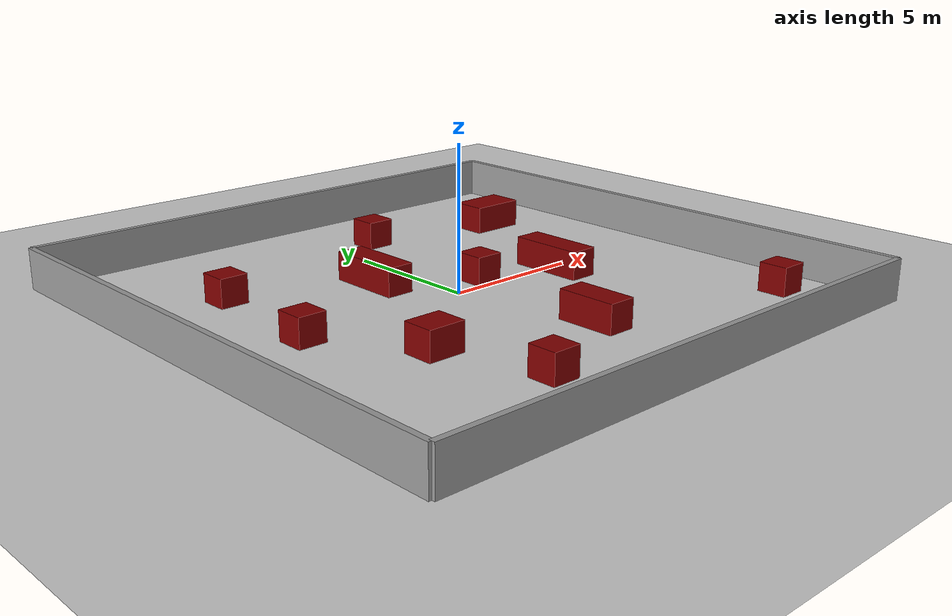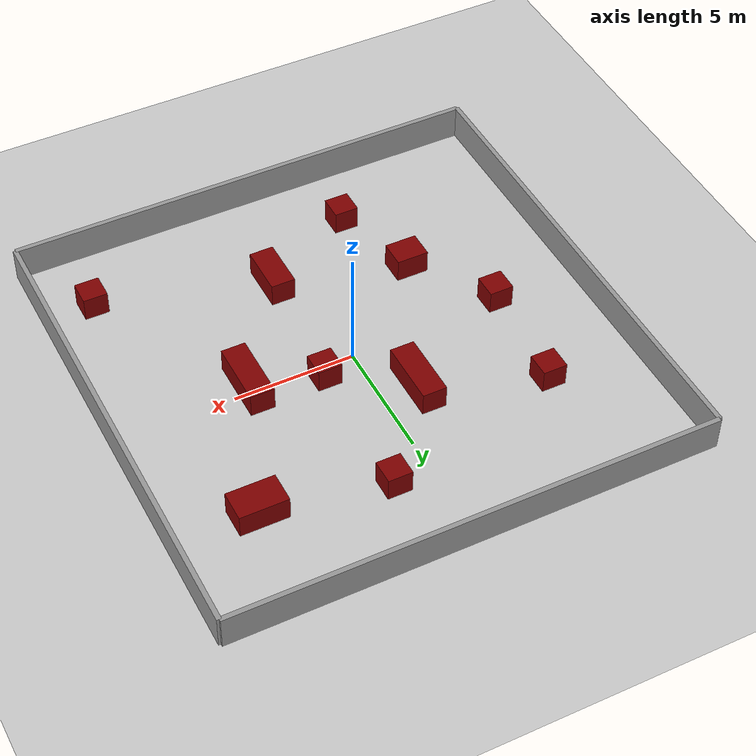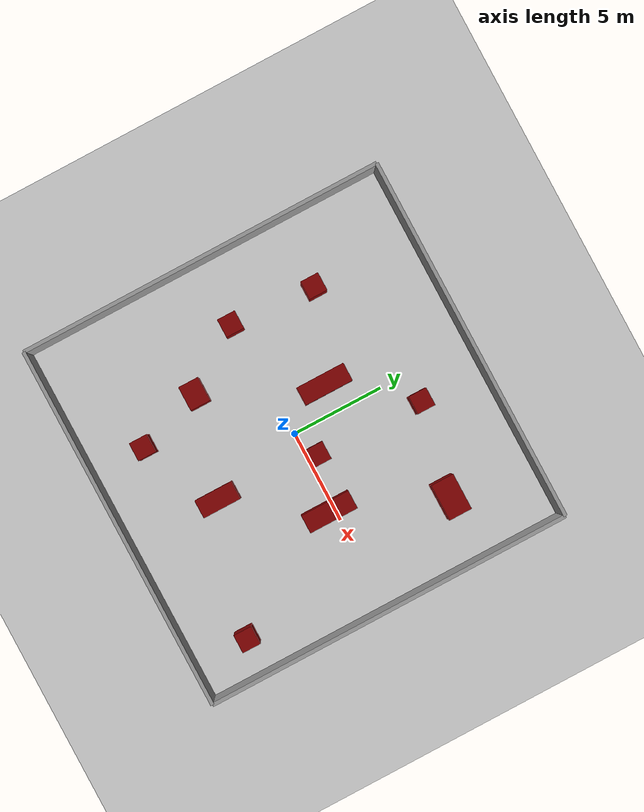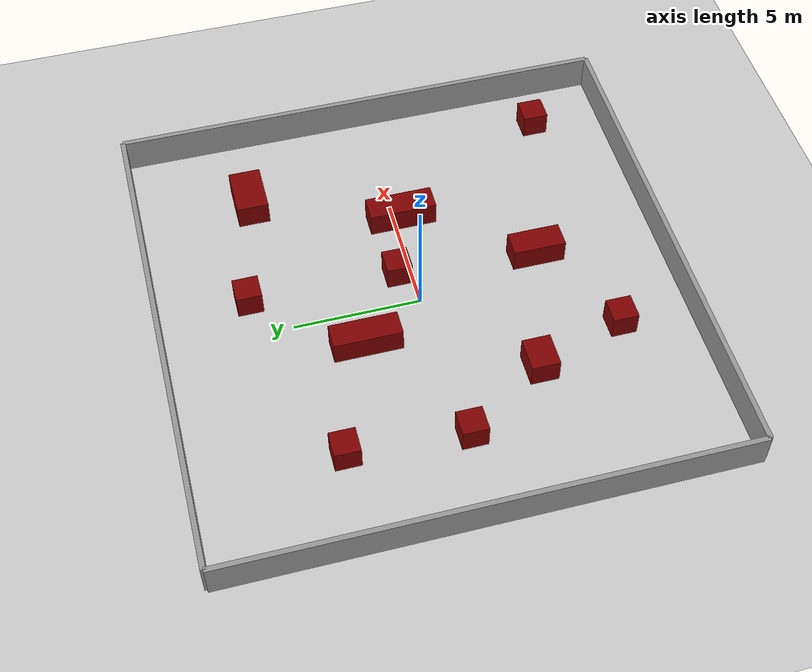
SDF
<sdf version="1.6">
 <world name="default">
  <light name="sun" type="directional">
   <cast_shadows>0</cast_shadows>
   <pose>0 0 10 0 -0 0</pose>
   <diffuse>0.8 0.8 0.8 1</diffuse>
   <specular>0.1 0.1 0.1 1</specular>
   <attenuation>
    <range>1000</range>
    <constant>0.9</constant>
    <linear>0.01</linear>
    <quadratic>0.001</quadratic>
   </attenuation>
   <direction>-0.5 0.5 -1</direction>
  </light>
  <model name="ground_plane">
   <static>1</static>
   <link name="link">
    <collision name="collision">
     <geometry><plane><normal>0 0 1</normal><size>100 100</size></plane></geometry>
     <surface><friction><ode><mu>100</mu><mu2>50</mu2></ode></friction></surface>
    </collision>
    <visual name="visual">
     <cast_shadows>0</cast_shadows>
     <geometry><plane><normal>0 0 1</normal><size>100 100</size></plane></geometry>
     <material>
      <script><uri>file://media/materials/scripts/gazebo.material</uri><name>Gazebo/Grey</name></script>
     </material>
    </visual>
   </link>
  </model>
  <gravity>0 0 -9.8</gravity>
  <magnetic_field>6e-06 2.3e-05 -4.2e-05</magnetic_field>
  <atmosphere type="adiabatic"/>
  <physics name="default_physics" default="0" type="ode">
   <max_step_size>0.001</max_step_size>
   <real_time_factor>1</real_time_factor>
   <real_time_update_rate>1000</real_time_update_rate>
  </physics>
  <scene><ambient>0.4 0.4 0.4 1</ambient><background>0.7 0.7 0.7 1</background><shadows>1</shadows></scene>
  <spherical_coordinates>
   <surface_model>EARTH_WGS84</surface_model>
   <latitude_deg>0</latitude_deg>
   <longitude_deg>0</longitude_deg>
   <elevation>0</elevation>
   <heading_deg>0</heading_deg>
  </spherical_coordinates>
  <model name="grey_wall_1">
   <link name="link">
    <inertial>
     <mass>1</mass>
     <inertia><ixx>1</ixx><ixy>0</ixy><ixz>0</ixz><iyy>1</iyy><iyz>0</iyz><izz>1</izz></inertia>
    </inertial>
    <visual name="visual">
     <cast_shadows>0</cast_shadows>
     <geometry><box><size>20 0.2 2.8</size></box></geometry>
     <material>
      <script>
       <uri>model://grey_wall/materials/scripts</uri>
       <uri>model://grey_wall/materials/textures</uri>
       <name>vrc/grey_wall</name>
      </script>
      <ambient>1 1 1 1</ambient>
      <diffuse>1 1 1 1</diffuse>
      <specular>0 0 0 1</specular>
      <emissive>0 0 0 1</emissive>
      <shader type="vertex"><normal_map>__default__</normal_map></shader>
     </material>
    </visual>
    <collision name="collision">
     <geometry><box><size>20 0.2 2.8</size></box></geometry>
     <surface>
      <friction>
       <ode><mu>1</mu><mu2>1</mu2><fdir1>0 0 0</fdir1><slip1>0</slip1><slip2>0</slip2></ode>
       <torsional>
        <coefficient>1</coefficient>
        <patch_radius>0</patch_radius>
        <surface_radius>0</surface_radius>
        <use_patch_radius>1</use_patch_radius>
        <ode><slip>0</slip></ode>
       </torsional>
      </friction>
      <bounce><restitution_coefficient>0</restitution_coefficient><threshold>1e+06</threshold></bounce>
      <contact>
       <collide_without_contact>0</collide_without_contact>
       <collide_without_contact_bitmask>1</collide_without_contact_bitmask>
       <collide_bitmask>1</collide_bitmask>
       <ode>
        <soft_cfm>0</soft_cfm>
        <soft_erp>0.2</soft_erp>
        <kp>1e+13</kp>
        <kd>1</kd>
        <max_vel>0.01</max_vel>
        <min_depth>0</min_depth>
       </ode>
       <bullet>
        <split_impulse>1</split_impulse>
        <split_impulse_penetration_threshold>-0.01</split_impulse_penetration_threshold>
        <soft_cfm>0</soft_cfm>
        <soft_erp>0.2</soft_erp>
        <kp>1e+13</kp>
        <kd>1</kd>
       </bullet>
      </contact>
     </surface>
    </collision>
   </link>
   <static>1</static>
   <pose>0 10 0 0 -0 0</pose>
  </model>
  <model name="grey_wall_2">
   <link name="link">
    <inertial>
     <mass>1</mass>
     <inertia><ixx>1</ixx><ixy>0</ixy><ixz>0</ixz><iyy>1</iyy><iyz>0</iyz><izz>1</izz></inertia>
    </inertial>
    <visual name="visual">
     <cast_shadows>0</cast_shadows>
     <geometry><box><size>20 0.2 2.8</size></box></geometry>
     <material>
      <script>
       <uri>model://grey_wall/materials/scripts</uri>
       <uri>model://grey_wall/materials/textures</uri>
       <name>vrc/grey_wall</name>
      </script>
      <ambient>1 1 1 1</ambient>
      <diffuse>1 1 1 1</diffuse>
      <specular>0 0 0 1</specular>
      <emissive>0 0 0 1</emissive>
      <shader type="vertex"><normal_map>__default__</normal_map></shader>
     </material>
    </visual>
    <collision name="collision">
     <geometry><box><size>20 0.2 2.8</size></box></geometry>
     <surface>
      <friction>
       <ode><mu>1</mu><mu2>1</mu2><fdir1>0 0 0</fdir1><slip1>0</slip1><slip2>0</slip2></ode>
       <torsional>
        <coefficient>1</coefficient>
        <patch_radius>0</patch_radius>
        <surface_radius>0</surface_radius>
        <use_patch_radius>1</use_patch_radius>
        <ode><slip>0</slip></ode>
       </torsional>
      </friction>
      <bounce><restitution_coefficient>0</restitution_coefficient><threshold>1e+06</threshold></bounce>
      <contact>
       <collide_without_contact>0</collide_without_contact>
       <collide_without_contact_bitmask>1</collide_without_contact_bitmask>
       <collide_bitmask>1</collide_bitmask>
       <ode>
        <soft_cfm>0</soft_cfm>
        <soft_erp>0.2</soft_erp>
        <kp>1e+13</kp>
        <kd>1</kd>
        <max_vel>0.01</max_vel>
        <min_depth>0</min_depth>
       </ode>
       <bullet>
        <split_impulse>1</split_impulse>
        <split_impulse_penetration_threshold>-0.01</split_impulse_penetration_threshold>
        <soft_cfm>0</soft_cfm>
        <soft_erp>0.2</soft_erp>
        <kp>1e+13</kp>
        <kd>1</kd>
       </bullet>
      </contact>
     </surface>
    </collision>
   </link>
   <static>1</static>
   <pose>0 -10 0 0 -0 0</pose>
  </model>
  <model name="grey_wall_3">
   <link name="link">
    <inertial>
     <mass>1</mass>
     <inertia><ixx>1</ixx><ixy>0</ixy><ixz>0</ixz><iyy>1</iyy><iyz>0</iyz><izz>1</izz></inertia>
    </inertial>
    <visual name="visual">
     <cast_shadows>0</cast_shadows>
     <geometry><box><size>20 0.2 2.8</size></box></geometry>
     <material>
      <script>
       <uri>model://grey_wall/materials/scripts</uri>
       <uri>model://grey_wall/materials/textures</uri>
       <name>vrc/grey_wall</name>
      </script>
      <ambient>1 1 1 1</ambient>
      <diffuse>1 1 1 1</diffuse>
      <specular>0 0 0 1</specular>
      <emissive>0 0 0 1</emissive>
      <shader type="vertex"><normal_map>__default__</normal_map></shader>
     </material>
    </visual>
    <collision name="collision">
     <geometry><box><size>20 0.2 2.8</size></box></geometry>
     <surface>
      <friction>
       <ode><mu>1</mu><mu2>1</mu2><fdir1>0 0 0</fdir1><slip1>0</slip1><slip2>0</slip2></ode>
       <torsional>
        <coefficient>1</coefficient>
        <patch_radius>0</patch_radius>
        <surface_radius>0</surface_radius>
        <use_patch_radius>1</use_patch_radius>
        <ode><slip>0</slip></ode>
       </torsional>
      </friction>
      <bounce><restitution_coefficient>0</restitution_coefficient><threshold>1e+06</threshold></bounce>
      <contact>
       <collide_without_contact>0</collide_without_contact>
       <collide_without_contact_bitmask>1</collide_without_contact_bitmask>
       <collide_bitmask>1</collide_bitmask>
       <ode>
        <soft_cfm>0</soft_cfm>
        <soft_erp>0.2</soft_erp>
        <kp>1e+13</kp>
        <kd>1</kd>
        <max_vel>0.01</max_vel>
        <min_depth>0</min_depth>
       </ode>
       <bullet>
        <split_impulse>1</split_impulse>
        <split_impulse_penetration_threshold>-0.01</split_impulse_penetration_threshold>
        <soft_cfm>0</soft_cfm>
        <soft_erp>0.2</soft_erp>
        <kp>1e+13</kp>
        <kd>1</kd>
       </bullet>
      </contact>
     </surface>
    </collision>
   </link>
   <static>1</static>
   <pose>-10 0 0 0 0 -1.5708</pose>
  </model>
  <model name="grey_wall_4">
   <link name="link">
    <inertial>
     <mass>1</mass>
     <inertia><ixx>1</ixx><ixy>0</ixy><ixz>0</ixz><iyy>1</iyy><iyz>0</iyz><izz>1</izz></inertia>
    </inertial>
    <visual name="visual">
     <cast_shadows>0</cast_shadows>
     <geometry><box><size>20 0.2 2.8</size></box></geometry>
     <material>
      <script>
       <uri>model://grey_wall/materials/scripts</uri>
       <uri>model://grey_wall/materials/textures</uri>
       <name>vrc/grey_wall</name>
      </script>
      <ambient>1 1 1 1</ambient>
      <diffuse>1 1 1 1</diffuse>
      <specular>0 0 0 1</specular>
      <emissive>0 0 0 1</emissive>
      <shader type="vertex"><normal_map>__default__</normal_map></shader>
     </material>
    </visual>
    <collision name="collision">
     <geometry><box><size>20 0.2 2.8</size></box></geometry>
     <surface>
      <friction>
       <ode><mu>1</mu><mu2>1</mu2><fdir1>0 0 0</fdir1><slip1>0</slip1><slip2>0</slip2></ode>
       <torsional>
        <coefficient>1</coefficient>
        <patch_radius>0</patch_radius>
        <surface_radius>0</surface_radius>
        <use_patch_radius>1</use_patch_radius>
        <ode><slip>0</slip></ode>
       </torsional>
      </friction>
      <bounce><restitution_coefficient>0</restitution_coefficient><threshold>1e+06</threshold></bounce>
      <contact>
       <collide_without_contact>0</collide_without_contact>
       <collide_without_contact_bitmask>1</collide_without_contact_bitmask>
       <collide_bitmask>1</collide_bitmask>
       <ode>
        <soft_cfm>0</soft_cfm>
        <soft_erp>0.2</soft_erp>
        <kp>1e+13</kp>
        <kd>1</kd>
        <max_vel>0.01</max_vel>
        <min_depth>0</min_depth>
       </ode>
       <bullet>
        <split_impulse>1</split_impulse>
        <split_impulse_penetration_threshold>-0.01</split_impulse_penetration_threshold>
        <soft_cfm>0</soft_cfm>
        <soft_erp>0.2</soft_erp>
        <kp>1e+13</kp>
        <kd>1</kd>
       </bullet>
      </contact>
     </surface>
    </collision>
   </link>
   <static>1</static>
   <pose>10 0 0 0 -0 1.5708</pose>
  </model>
  <model name="unit_box_0">
   <pose>-1.50301 2.51635 0.499907 6.9e-05 -0 0</pose>
   <link name="link">
    <inertial>
     <mass>1</mass>
     <inertia>
      <ixx>0.166667</ixx>
      <ixy>0</ixy>
      <ixz>0</ixz>
      <iyy>0.166667</iyy>
      <iyz>0</iyz>
      <izz>0.166667</izz>
     </inertia>
    </inertial>
    <collision name="collision"><geometry><box><size>1 2.67 1</size></box></geometry></collision>
    <visual name="visual">
     <geometry><box><size>1 2.67 1</size></box></geometry>
     <material>
      <ambient>0.5 0 0 1</ambient>
      <diffuse>0.5 0 0 1</diffuse>
      <specular>0.1 0.1 0.1 1</specular>
      <emissive>0 0 0 0</emissive>
      <script><name>Gazebo/Grey</name><uri>file://media/materials/scripts/gazebo.material</uri></script>
     </material>
    </visual>
   </link>
  </model>
  <model name="unit_box_1">
   <pose>6.53109 5.45916 0.5 0 -0 0</pose>
   <link name="link">
    <inertial>
     <mass>1</mass>
     <inertia>
      <ixx>0.166667</ixx>
      <ixy>0</ixy>
      <ixz>0</ixz>
      <iyy>0.166667</iyy>
      <iyz>0</iyz>
      <izz>0.166667</izz>
     </inertia>
    </inertial>
    <collision name="collision"><geometry><box><size>1.98744 1.25657 1</size></box></geometry></collision>
    <visual name="visual">
     <geometry><box><size>1.98744 1.25657 1</size></box></geometry>
     <material>
      <ambient>0.5 0 0 1</ambient>
      <diffuse>0.5 0 0 1</diffuse>
      <specular>0.1 0.1 0.1 1</specular>
      <emissive>0 0 0 0</emissive>
      <script><name>Gazebo/Grey</name><uri>file://media/materials/scripts/gazebo.material</uri></script>
     </material>
    </visual>
   </link>
  </model>
  <model name="unit_box_2">
   <pose>4.2885 -0.305795 0.499904 -7.2e-05 0 0</pose>
   <link name="link">
    <inertial>
     <mass>1</mass>
     <inertia>
      <ixx>0.166667</ixx>
      <ixy>0</ixy>
      <ixz>0</ixz>
      <iyy>0.166667</iyy>
      <iyz>0</iyz>
      <izz>0.166667</izz>
     </inertia>
    </inertial>
    <collision name="collision"><geometry><box><size>1 2.6886 1</size></box></geometry></collision>
    <visual name="visual">
     <geometry><box><size>1 2.6886 1</size></box></geometry>
     <material>
      <ambient>0.5 0 0 1</ambient>
      <diffuse>0.5 0 0 1</diffuse>
      <specular>0.1 0.1 0.1 1</specular>
      <emissive>0 0 0 0</emissive>
      <script><name>Gazebo/Grey</name><uri>file://media/materials/scripts/gazebo.material</uri></script>
     </material>
    </visual>
   </link>
  </model>
  <model name="unit_box_3">
   <pose>1.089 -4.98568 0.49998 -1.9e-05 0 0</pose>
   <link name="link">
    <inertial>
     <mass>1</mass>
     <inertia>
      <ixx>0.166667</ixx>
      <ixy>0</ixy>
      <ixz>0</ixz>
      <iyy>0.166667</iyy>
      <iyz>0</iyz>
      <izz>0.166667</izz>
     </inertia>
    </inertial>
    <collision name="collision"><geometry><box><size>1 2.08446 1</size></box></geometry></collision>
    <visual name="visual">
     <geometry><box><size>1 2.08446 1</size></box></geometry>
     <material>
      <ambient>0.5 0 0 1</ambient>
      <diffuse>0.5 0 0 1</diffuse>
      <specular>0.1 0.1 0.1 1</specular>
      <emissive>0 0 0 0</emissive>
      <script><name>Gazebo/Grey</name><uri>file://media/materials/scripts/gazebo.material</uri></script>
     </material>
    </visual>
   </link>
  </model>
  <model name="unit_box_4">
   <pose>-4.16235 -3.50212 0.5 0 -0 1.8e-05</pose>
   <link name="link">
    <inertial>
     <mass>1</mass>
     <inertia>
      <ixx>0.166667</ixx>
      <ixy>0</ixy>
      <ixz>0</ixz>
      <iyy>0.166667</iyy>
      <iyz>0</iyz>
      <izz>0.166667</izz>
     </inertia>
    </inertial>
    <collision name="collision"><geometry><box><size>1.32862 1.10201 1</size></box></geometry></collision>
    <visual name="visual">
     <geometry><box><size>1.32862 1.10201 1</size></box></geometry>
     <material>
      <ambient>0.5 0 0 1</ambient>
      <diffuse>0.5 0 0 1</diffuse>
      <specular>0.1 0.1 0.1 1</specular>
      <emissive>0 0 0 0</emissive>
      <script><name>Gazebo/Grey</name><uri>file://media/materials/scripts/gazebo.material</uri></script>
     </material>
    </visual>
   </link>
  </model>
  <model name="unit_box_5">
   <pose>-6.11816 4.3731 0.499995 -1e-05 0 0</pose>
   <link name="link">
    <inertial>
     <mass>1</mass>
     <inertia>
      <ixx>0.166667</ixx>
      <ixy>0</ixy>
      <ixz>0</ixz>
      <iyy>0.166667</iyy>
      <iyz>0</iyz>
      <izz>0.166667</izz>
     </inertia>
    </inertial>
    <collision name="collision"><geometry><box><size>1 1 1</size></box></geometry></collision>
    <visual name="visual">
     <geometry><box><size>1 1 1</size></box></geometry>
     <material>
      <ambient>0.5 0 0 1</ambient>
      <diffuse>0.5 0 0 1</diffuse>
      <specular>0.1 0.1 0.1 1</specular>
      <emissive>0 0 0 0</emissive>
      <script><name>Gazebo/Grey</name><uri>file://media/materials/scripts/gazebo.material</uri></script>
     </material>
    </visual>
   </link>
  </model>
  <model name="unit_box_6">
   <pose>1.55408 6.44098 0.499995 0 1e-05 0</pose>
   <link name="link">
    <inertial>
     <mass>1</mass>
     <inertia>
      <ixx>0.166667</ixx>
      <ixy>0</ixy>
      <ixz>0</ixz>
      <iyy>0.166667</iyy>
      <iyz>0</iyz>
      <izz>0.166667</izz>
     </inertia>
    </inertial>
    <collision name="collision"><geometry><box><size>1 1 1</size></box></geometry></collision>
    <visual name="visual">
     <geometry><box><size>1 1 1</size></box></geometry>
     <material>
      <ambient>0.5 0 0 1</ambient>
      <diffuse>0.5 0 0 1</diffuse>
      <specular>0.1 0.1 0.1 1</specular>
      <emissive>0 0 0 0</emissive>
      <script><name>Gazebo/Grey</name><uri>file://media/materials/scripts/gazebo.material</uri></script>
     </material>
    </visual>
   </link>
  </model>
  <model name="unit_box_7">
   <pose>1.47283 0.557103 0.499995 -1e-05 0 0</pose>
   <link name="link">
    <inertial>
     <mass>1</mass>
     <inertia>
      <ixx>0.166667</ixx>
      <ixy>0</ixy>
      <ixz>0</ixz>
      <iyy>0.166667</iyy>
      <iyz>0</iyz>
      <izz>0.166667</izz>
     </inertia>
    </inertial>
    <collision name="collision"><geometry><box><size>1 1 1</size></box></geometry></collision>
    <visual name="visual">
     <geometry><box><size>1 1 1</size></box></geometry>
     <material>
      <ambient>0.5 0 0 1</ambient>
      <diffuse>0.5 0 0 1</diffuse>
      <specular>0.1 0.1 0.1 1</specular>
      <emissive>0 0 0 0</emissive>
      <script><name>Gazebo/Grey</name><uri>file://media/materials/scripts/gazebo.material</uri></script>
     </material>
    </visual>
   </link>
  </model>
  <model name="unit_box_8">
   <pose>8 -7 0.499995 1e-05 -0 0</pose>
   <link name="link">
    <inertial>
     <mass>1</mass>
     <inertia>
      <ixx>0.166667</ixx>
      <ixy>0</ixy>
      <ixz>0</ixz>
      <iyy>0.166667</iyy>
      <iyz>0</iyz>
      <izz>0.166667</izz>
     </inertia>
    </inertial>
    <collision name="collision"><geometry><box><size>1 1 1</size></box></geometry></collision>
    <visual name="visual">
     <geometry><box><size>1 1 1</size></box></geometry>
     <material>
      <ambient>0.5 0 0 1</ambient>
      <diffuse>0.5 0 0 1</diffuse>
      <specular>0.1 0.1 0.1 1</specular>
      <emissive>0 0 0 0</emissive>
      <script><name>Gazebo/Grey</name><uri>file://media/materials/scripts/gazebo.material</uri></script>
     </material>
    </visual>
   </link>
  </model>
  <model name="unit_box_9">
   <pose>-3.00931 -7.07426 0.499995 -1e-05 0 0</pose>
   <link name="link">
    <inertial>
     <mass>1</mass>
     <inertia>
      <ixx>0.166667</ixx>
      <ixy>0</ixy>
      <ixz>0</ixz>
      <iyy>0.166667</iyy>
      <iyz>0</iyz>
      <izz>0.166667</izz>
     </inertia>
    </inertial>
    <collision name="collision"><geometry><box><size>1 1 1</size></box></geometry></collision>
    <visual name="visual">
     <geometry><box><size>1 1 1</size></box></geometry>
     <material>
      <ambient>0.5 0 0 1</ambient>
      <diffuse>0.5 0 0 1</diffuse>
      <specular>0.1 0.1 0.1 1</specular>
      <emissive>0 0 0 0</emissive>
      <script><name>Gazebo/Grey</name><uri>file://media/materials/scripts/gazebo.material</uri></script>
     </material>
    </visual>
   </link>
  </model>
  <model name="unit_box_10">
   <pose>-6.40752 -0.224773 0.499995 0 1e-05 0</pose>
   <link name="link">
    <inertial>
     <mass>1</mass>
     <inertia>
      <ixx>0.166667</ixx>
      <ixy>0</ixy>
      <ixz>0</ixz>
      <iyy>0.166667</iyy>
      <iyz>0</iyz>
      <izz>0.166667</izz>
     </inertia>
    </inertial>
    <collision name="collision"><geometry><box><size>1 1 1</size></box></geometry></collision>
    <visual name="visual">
     <geometry><box><size>1 1 1</size></box></geometry>
     <material>
      <ambient>0.5 0 0 1</ambient>
      <diffuse>0.5 0 0 1</diffuse>
      <specular>0.1 0.1 0.1 1</specular>
      <emissive>0 0 0 0</emissive>
      <script><name>Gazebo/Grey</name><uri>file://media/materials/scripts/gazebo.material</uri></script>
     </material>
    </visual>
   </link>
  </model>
 </world>
</sdf>
